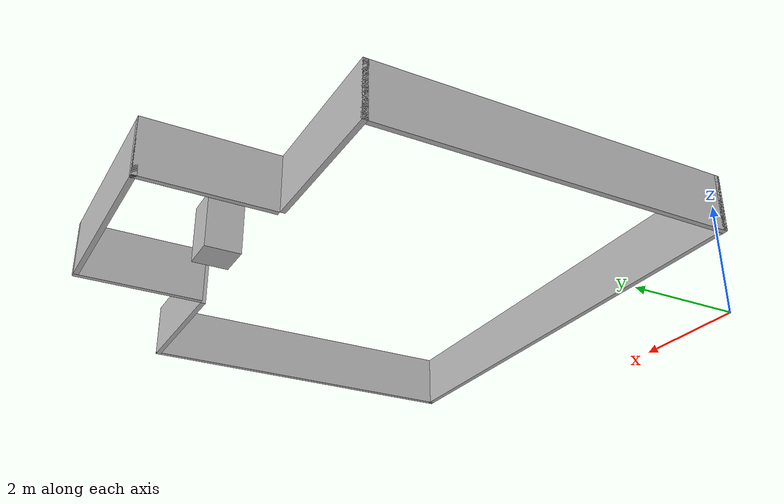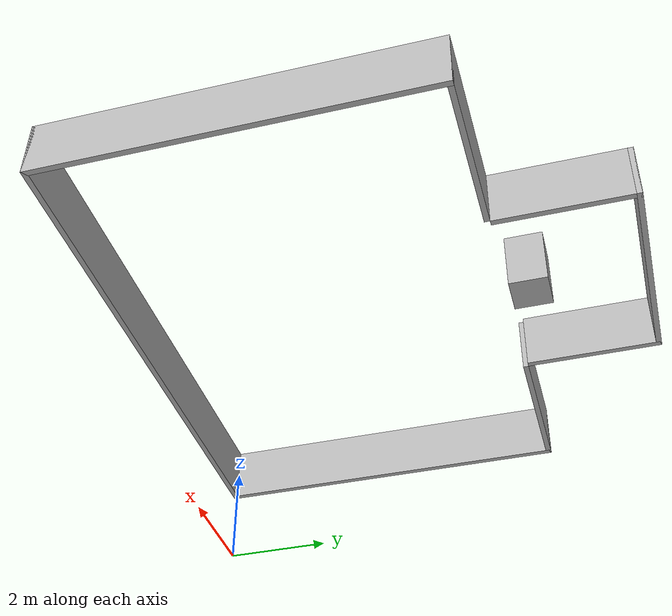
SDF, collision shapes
<?xml version='1.0'?>
<sdf version='1.6'>
  <model name='lar_walls'>
    <static>true</static>
    <allow_auto_disable>true</allow_auto_disable>
    <link name='walls'>
      <pose>0 0 1.52 0 -0 0</pose>
      <gravity>false</gravity>
      <self_collide>false</self_collide>
      <kinematic>false</kinematic>

      <visual name='visual'>
        <pose>0 0 0 0 0 0</pose>
        <cast_shadows>false</cast_shadows>
        <transparency>0</transparency>
        <geometry>
          <mesh>
            <uri>model://lar_walls/meshes/lar_walls.dae</uri>
            <scale>1 1 1</scale>
          </mesh>
        </geometry>
      </visual>

      <collision name='wall_bottom'>
        <pose>4.873 -0.071 0.531 0 0 0</pose>
        <max_contacts>10</max_contacts>
        <geometry>
          <box>
            <size>10 0.1 1.1</size>
          </box>
        </geometry>
        <surface>
          <friction>
            <ode>
              <mu>1.0</mu>
              <mu2>1.0</mu2>
            </ode>
          </friction>
          <contact>
            <ode>
              <kp>1000000.0</kp>
              <kd>10.0</kd>
              <max_vel>0.01</max_vel>
              <min_depth>0.001</min_depth>
            </ode>
          </contact>
        </surface>
      </collision>

      <collision name='wall_right_low'>
        <pose>9.823 3.379 0.531 0 0 0</pose>
        <max_contacts>10</max_contacts>
        <geometry>
          <box>
            <size>0.1 7 1.1</size>
          </box>
        </geometry>
        <surface>
          <friction>
            <ode>
              <mu>1.0</mu>
              <mu2>1.0</mu2>
            </ode>
          </friction>
          <contact>
            <ode>
              <kp>1000000.0</kp>
              <kd>10.0</kd>
              <max_vel>0.01</max_vel>
              <min_depth>0.001</min_depth>
            </ode>
          </contact>
        </surface>
      </collision>

      <collision name='wall_step_r'>
        <pose>8.373 6.829 0.531 0 0 0</pose>
        <max_contacts>10</max_contacts>
        <geometry>
          <box>
            <size>3 0.1 1.1</size>
          </box>
        </geometry>
        <surface>
          <friction>
            <ode>
              <mu>1.0</mu>
              <mu2>1.0</mu2>
            </ode>
          </friction>
          <contact>
            <ode>
              <kp>1000000.0</kp>
              <kd>10.0</kd>
              <max_vel>0.01</max_vel>
              <min_depth>0.001</min_depth>
            </ode>
          </contact>
        </surface>
      </collision>

      <collision name='wall_right_up'>
        <pose>6.823 8.129 0.531 0 0 0</pose>
        <max_contacts>10</max_contacts>
        <geometry>
          <box>
            <size>0.1 2.5 1.1</size>
          </box>
        </geometry>
        <surface>
          <friction>
            <ode>
              <mu>1.0</mu>
              <mu2>1.0</mu2>
            </ode>
          </friction>
          <contact>
            <ode>
              <kp>1000000.0</kp>
              <kd>10.0</kd>
              <max_vel>0.01</max_vel>
              <min_depth>0.001</min_depth>
            </ode>
          </contact>
        </surface>
      </collision>

      <collision name='wall_top'>
        <pose>4.873 9.329 0.531 0 0 0</pose>
        <max_contacts>10</max_contacts>
        <geometry>
          <box>
            <size>4 0.1 1.1</size>
          </box>
        </geometry>
        <surface>
          <friction>
            <ode>
              <mu>1.0</mu>
              <mu2>1.0</mu2>
            </ode>
          </friction>
          <contact>
            <ode>
              <kp>1000000.0</kp>
              <kd>10.0</kd>
              <max_vel>0.01</max_vel>
              <min_depth>0.001</min_depth>
            </ode>
          </contact>
        </surface>
      </collision>

      <collision name='wall_left_up'>
        <pose>2.923 8.129 0.531 0 0 0</pose>
        <max_contacts>10</max_contacts>
        <geometry>
          <box>
            <size>0.1 2.5 1.1</size>
          </box>
        </geometry>
        <surface>
          <friction>
            <ode>
              <mu>1.0</mu>
              <mu2>1.0</mu2>
            </ode>
          </friction>
          <contact>
            <ode>
              <kp>1000000.0</kp>
              <kd>10.0</kd>
              <max_vel>0.01</max_vel>
              <min_depth>0.001</min_depth>
            </ode>
          </contact>
        </surface>
      </collision>

      <collision name='wall_step_l'>
        <pose>1.373 6.829 0.531 0 0 0</pose>
        <max_contacts>10</max_contacts>
        <geometry>
          <box>
            <size>3 0.1 1.1</size>
          </box>
        </geometry>
        <surface>
          <friction>
            <ode>
              <mu>1.0</mu>
              <mu2>1.0</mu2>
            </ode>
          </friction>
          <contact>
            <ode>
              <kp>1000000.0</kp>
              <kd>10.0</kd>
              <max_vel>0.01</max_vel>
              <min_depth>0.001</min_depth>
            </ode>
          </contact>
        </surface>
      </collision>

      <collision name='wall_left_low'>
        <pose>-0.077 3.379 0.531 0 0 0</pose>
        <max_contacts>10</max_contacts>
        <geometry>
          <box>
            <size>0.1 7 1.1</size>
          </box>
        </geometry>
        <surface>
          <friction>
            <ode>
              <mu>1.0</mu>
              <mu2>1.0</mu2>
            </ode>
          </friction>
          <contact>
            <ode>
              <kp>1000000.0</kp>
              <kd>10.0</kd>
              <max_vel>0.01</max_vel>
              <min_depth>0.001</min_depth>
            </ode>
          </contact>
        </surface>
      </collision>

      <collision name='wall_pillar'>
        <pose>4.923 7.254 0.531 0 0 0</pose>
        <max_contacts>10</max_contacts>
        <geometry>
          <box>
            <size>0.7 0.7 1.1</size>
          </box>
        </geometry>
        <surface>
          <friction>
            <ode>
              <mu>1.0</mu>
              <mu2>1.0</mu2>
            </ode>
          </friction>
          <contact>
            <ode>
              <kp>1000000.0</kp>
              <kd>10.0</kd>
              <max_vel>0.01</max_vel>
              <min_depth>0.001</min_depth>
            </ode>
          </contact>
        </surface>
      </collision>
    </link>
  </model>
</sdf>
